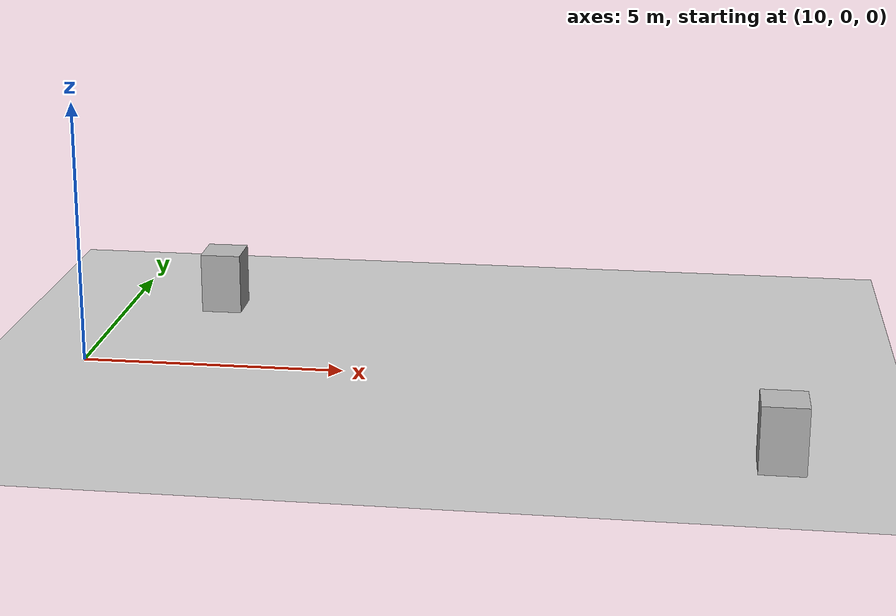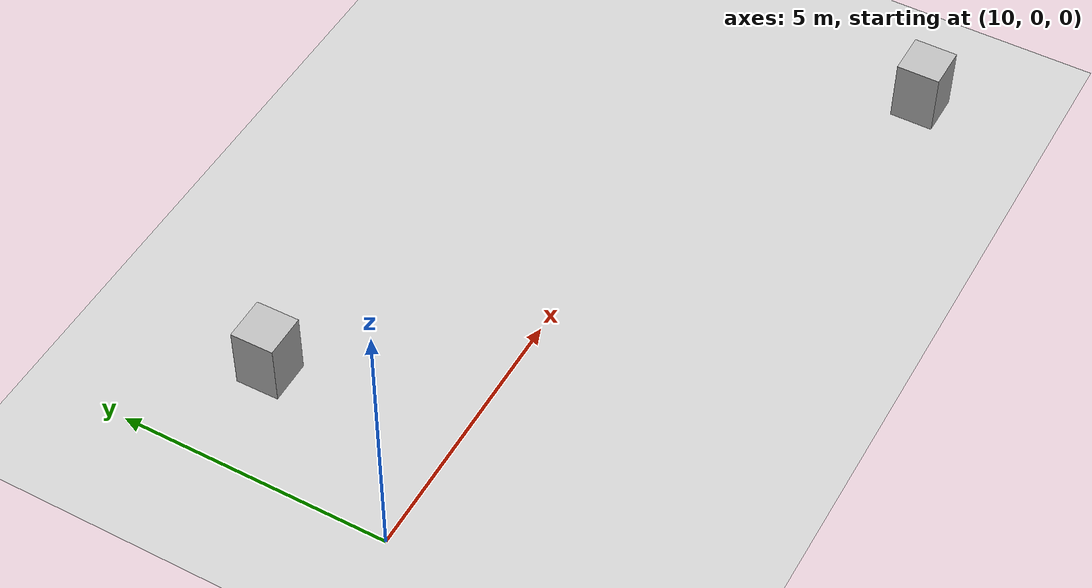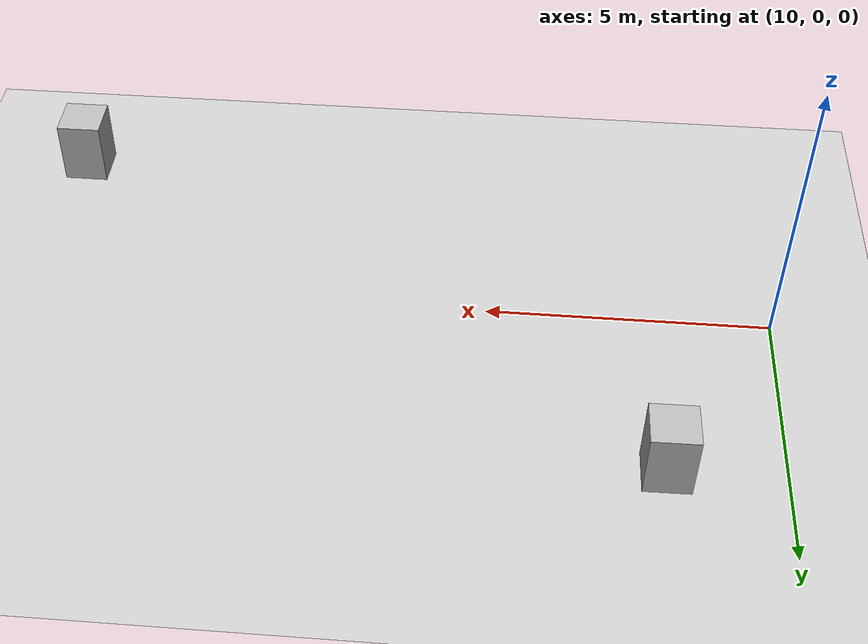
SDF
<?xml version="1.0"?>
<sdf version="1.6">
  <world name="v2-04g-p2-q1-qual-ackermann-circle-v135-s5339">
    <gravity>0 0 -9.81</gravity>
    <physics name="v2_deterministic" type="ode">
      <max_step_size>0.002</max_step_size>
      <real_time_update_rate>500</real_time_update_rate>
    </physics>
    <include>
      <uri>model://sun</uri>
    </include>
    <include>
      <uri>model://ground_plane</uri>
    </include>
    <model name="cruise-left">
      <static>true</static>
      <pose>11.957095006 3.455894872 0.600000000 0 0 0.008421728</pose>
      <link name="link">
        <collision name="collision">
          <geometry>
            <box>
              <size>0.800000 0.800000 1.200000</size>
            </box>
          </geometry>
        </collision>
        <visual name="visual">
          <geometry>
            <box>
              <size>0.800000 0.800000 1.200000</size>
            </box>
          </geometry>
        </visual>
      </link>
    </model>
    <model name="cruise-right">
      <static>true</static>
      <pose>22.945251352 -3.458159972 0.600000000 0 0 -0.001428002</pose>
      <link name="link">
        <collision name="collision">
          <geometry>
            <box>
              <size>0.800000 0.800000 1.200000</size>
            </box>
          </geometry>
        </collision>
        <visual name="visual">
          <geometry>
            <box>
              <size>0.800000 0.800000 1.200000</size>
            </box>
          </geometry>
        </visual>
      </link>
    </model>
  </world>
</sdf>
